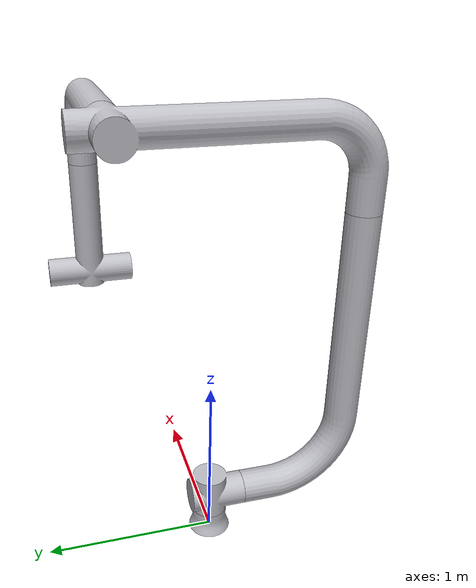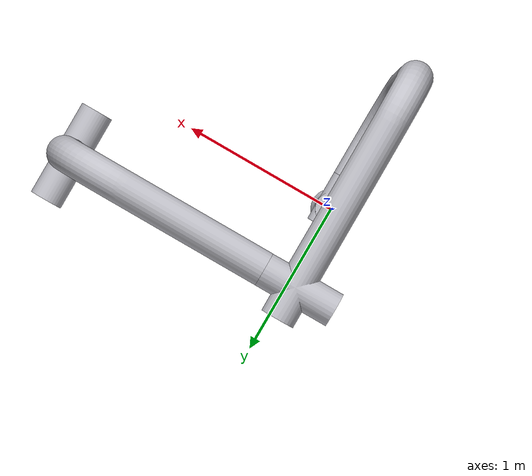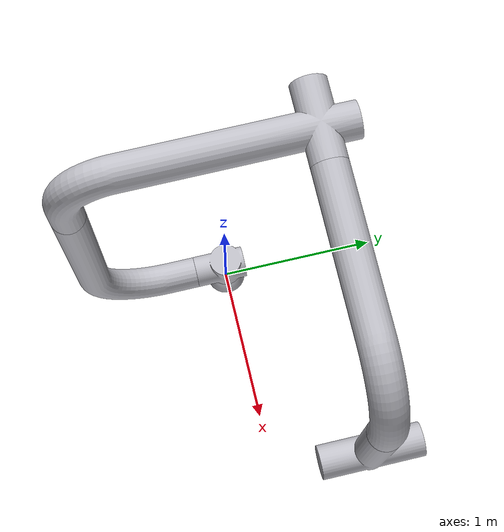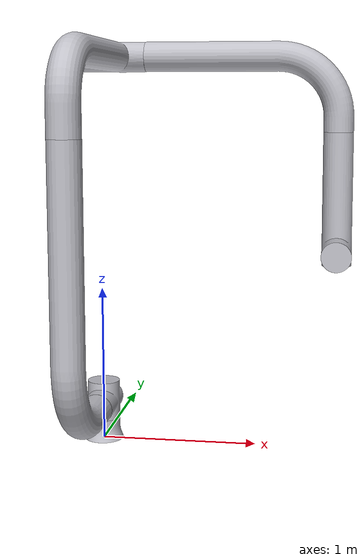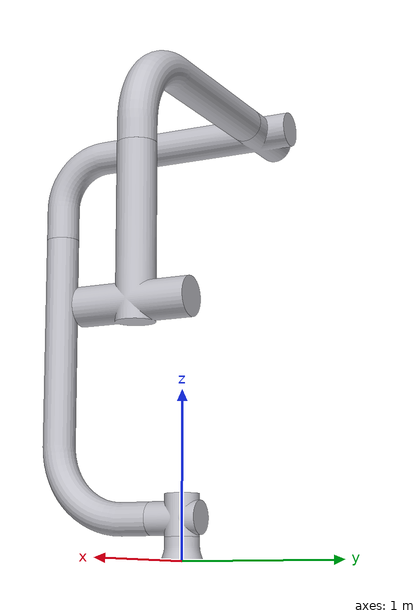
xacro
<?xml version="1.0" ?>
<robot name="welder" xmlns:xacro="http://www.ros.org/wiki/xacro">

<xacro:include filename="$(find welder_description)/urdf/materials.xacro" />
<xacro:include filename="$(find welder_description)/urdf/welder.trans" />
<xacro:include filename="$(find welder_description)/urdf/welder.gazebo" />
<link name="base_link">
  <inertial>
    <origin xyz="-7.16285389829585e-11 -1.5064593165281103e-11 0.019107627086653742" rpy="0 0 0"/>
    <mass value="2.955437891841375"/>
    <inertia ixx="0.002819" iyy="0.002819" izz="0.004764" ixy="-0.0" iyz="-0.0" ixz="-0.0"/>
  </inertial>
  <visual>
    <origin xyz="0 0 0" rpy="0 0 0"/>
    <geometry>
      <mesh filename="file://$(find welder_description)/meshes/base_link.stl" scale="0.001 0.001 0.001"/>
    </geometry>
    <material name="silver"/>
  </visual>
  <collision>
    <origin xyz="0 0 0" rpy="0 0 0"/>
    <geometry>
      <mesh filename="file://$(find welder_description)/meshes/base_link.stl" scale="0.001 0.001 0.001"/>
    </geometry>
  </collision>
</link>

<link name="link_1_1">
  <inertial>
    <origin xyz="0.0 0.0009431909165482249 0.11440920058437602" rpy="0 0 0"/>
    <mass value="2.2877730999420254"/>
    <inertia ixx="0.009859" iyy="0.009807" izz="0.000515" ixy="0.0" iyz="-0.000185" ixz="0.0"/>
  </inertial>
  <visual>
    <origin xyz="-0.0 -0.0 -0.05" rpy="0 0 0"/>
    <geometry>
      <mesh filename="file://$(find welder_description)/meshes/link_1_1.stl" scale="0.001 0.001 0.001"/>
    </geometry>
    <material name="silver"/>
  </visual>
  <collision>
    <origin xyz="-0.0 -0.0 -0.05" rpy="0 0 0"/>
    <geometry>
      <mesh filename="file://$(find welder_description)/meshes/link_1_1.stl" scale="0.001 0.001 0.001"/>
    </geometry>
  </collision>
</link>

<link name="link_2_1">
  <inertial>
    <origin xyz="0.0 -0.02834196834303381 -0.012543410312423592" rpy="0 0 0"/>
    <mass value="0.8650806084810733"/>
    <inertia ixx="0.000478" iyy="0.0004" izz="0.000257" ixy="0.0" iyz="-1.8e-05" ixz="0.0"/>
  </inertial>
  <visual>
    <origin xyz="-0.0 0.02 -0.25" rpy="0 0 0"/>
    <geometry>
      <mesh filename="file://$(find welder_description)/meshes/link_2_1.stl" scale="0.001 0.001 0.001"/>
    </geometry>
    <material name="silver"/>
  </visual>
  <collision>
    <origin xyz="-0.0 0.02 -0.25" rpy="0 0 0"/>
    <geometry>
      <mesh filename="file://$(find welder_description)/meshes/link_2_1.stl" scale="0.001 0.001 0.001"/>
    </geometry>
  </collision>
</link>

<link name="link_3_1">
  <inertial>
    <origin xyz="0.0 -0.0009734727614764405 -0.056920756556270824" rpy="0 0 0"/>
    <mass value="1.1630985552142648"/>
    <inertia ixx="0.001298" iyy="0.00127" izz="0.000267" ixy="0.0" iyz="-3.8e-05" ixz="0.0"/>
  </inertial>
  <visual>
    <origin xyz="-0.0 0.05 -0.2" rpy="0 0 0"/>
    <geometry>
      <mesh filename="file://$(find welder_description)/meshes/link_3_1.stl" scale="0.001 0.001 0.001"/>
    </geometry>
    <material name="silver"/>
  </visual>
  <collision>
    <origin xyz="-0.0 0.05 -0.2" rpy="0 0 0"/>
    <geometry>
      <mesh filename="file://$(find welder_description)/meshes/link_3_1.stl" scale="0.001 0.001 0.001"/>
    </geometry>
  </collision>
</link>

<link name="link_4_1">
  <inertial>
    <origin xyz="0.0 -0.024901368509315194 0.031832335951871196" rpy="0 0 0"/>
    <mass value="1.2085805984841382"/>
    <inertia ixx="0.001374" iyy="0.001327" izz="0.000295" ixy="0.0" iyz="4e-06" ixz="0.0"/>
  </inertial>
  <visual>
    <origin xyz="-0.0 0.075 -0.11" rpy="0 0 0"/>
    <geometry>
      <mesh filename="file://$(find welder_description)/meshes/link_4_1.stl" scale="0.001 0.001 0.001"/>
    </geometry>
    <material name="silver"/>
  </visual>
  <collision>
    <origin xyz="-0.0 0.075 -0.11" rpy="0 0 0"/>
    <geometry>
      <mesh filename="file://$(find welder_description)/meshes/link_4_1.stl" scale="0.001 0.001 0.001"/>
    </geometry>
  </collision>
</link>

<link name="link_5_1">
  <inertial>
    <origin xyz="0.0 -4.404769588479962e-05 0.03489668781804081" rpy="0 0 0"/>
    <mass value="0.7187100595069817"/>
    <inertia ixx="0.000352" iyy="0.000343" izz="0.000159" ixy="-0.0" iyz="1e-06" ixz="0.0"/>
  </inertial>
  <visual>
    <origin xyz="-0.0 0.1 -0.2" rpy="0 0 0"/>
    <geometry>
      <mesh filename="file://$(find welder_description)/meshes/link_5_1.stl" scale="0.001 0.001 0.001"/>
    </geometry>
    <material name="silver"/>
  </visual>
  <collision>
    <origin xyz="-0.0 0.1 -0.2" rpy="0 0 0"/>
    <geometry>
      <mesh filename="file://$(find welder_description)/meshes/link_5_1.stl" scale="0.001 0.001 0.001"/>
    </geometry>
  </collision>
</link>

<link name="link_6_1">
  <inertial>
    <origin xyz="0.0 -0.01680268432280871 1.6653345369377348e-16" rpy="0 0 0"/>
    <mass value="0.26501912859947435"/>
    <inertia ixx="5.2e-05" iyy="3.9e-05" izz="5.2e-05" ixy="0.0" iyz="-0.0" ixz="-0.0"/>
  </inertial>
  <visual>
    <origin xyz="-0.0 0.12 -0.25" rpy="0 0 0"/>
    <geometry>
      <mesh filename="file://$(find welder_description)/meshes/link_6_1.stl" scale="0.001 0.001 0.001"/>
    </geometry>
    <material name="silver"/>
  </visual>
  <collision>
    <origin xyz="-0.0 0.12 -0.25" rpy="0 0 0"/>
    <geometry>
      <mesh filename="file://$(find welder_description)/meshes/link_6_1.stl" scale="0.001 0.001 0.001"/>
    </geometry>
  </collision>
</link>

<joint name="joint_1" type="continuous">
  <origin xyz="0.0 0.0 0.05" rpy="0 0 0"/>
  <parent link="base_link"/>
  <child link="link_1_1"/>
  <axis xyz="0.0 0.0 1.0"/>
</joint>

<joint name="joint_2" type="continuous">
  <origin xyz="0.0 -0.02 0.2" rpy="0 0 0"/>
  <parent link="link_1_1"/>
  <child link="link_2_1"/>
  <axis xyz="0.0 -1.0 0.0"/>
</joint>

<joint name="joint_3" type="continuous">
  <origin xyz="0.0 -0.03 -0.05" rpy="0 0 0"/>
  <parent link="link_2_1"/>
  <child link="link_3_1"/>
  <axis xyz="0.0 0.0 -1.0"/>
</joint>

<joint name="joint_4" type="continuous">
  <origin xyz="0.0 -0.025 -0.09" rpy="0 0 0"/>
  <parent link="link_3_1"/>
  <child link="link_4_1"/>
  <axis xyz="0.0 1.0 0.0"/>
</joint>

<joint name="joint_5" type="continuous">
  <origin xyz="0.0 -0.025 0.09" rpy="0 0 0"/>
  <parent link="link_4_1"/>
  <child link="link_5_1"/>
  <axis xyz="0.0 0.0 1.0"/>
</joint>

<joint name="joint_6" type="continuous">
  <origin xyz="0.0 -0.02 0.05" rpy="0 0 0"/>
  <parent link="link_5_1"/>
  <child link="link_6_1"/>
  <axis xyz="0.0 -1.0 0.0"/>
</joint>

</robot>
